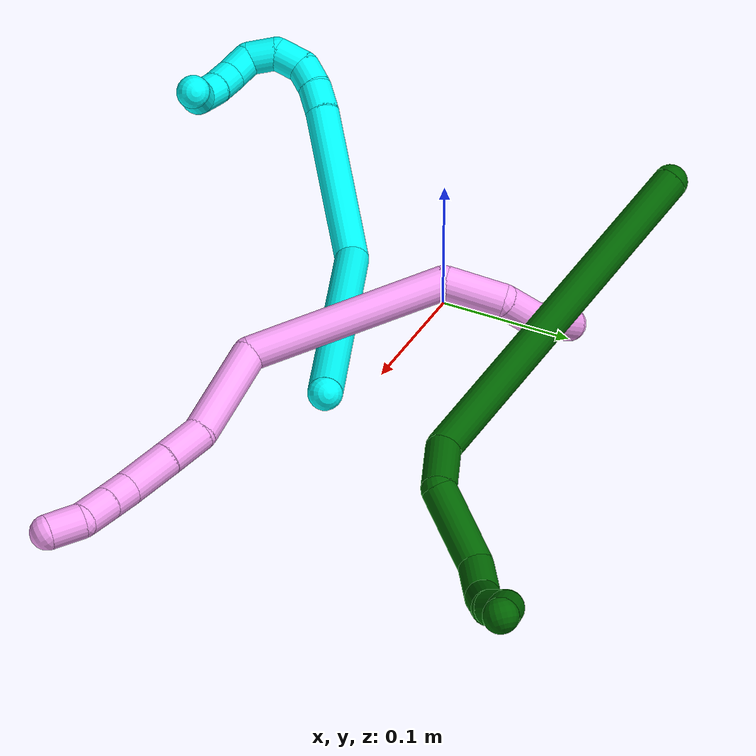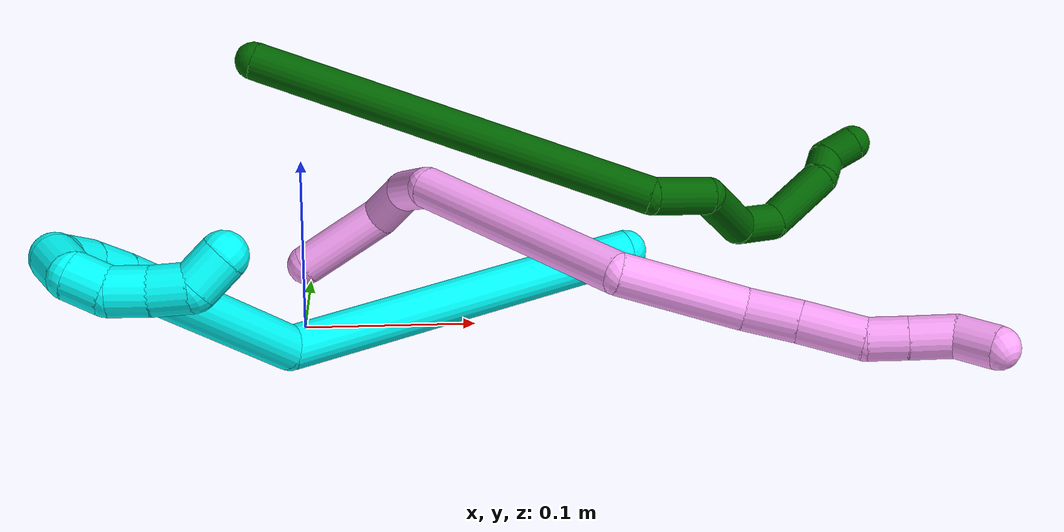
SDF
<sdf version="1.7">
 <world name="default">
  <model name="3">
   <static>0</static>
   <link name="3">
    <collision name="collision-cylinder-e_1_1_4">
     <pose>-0.053777 -0.008825 -0.090783 3.04469 -0.532731 -2.78984</pose>
     <geometry><cylinder><radius>0.0125</radius><length>0.211769</length></cylinder></geometry>
     <surface>
      <friction><ode><mu>1.16</mu><mu2>1.16</mu2><slip1>0</slip1><slip2>0</slip2></ode></friction>
      <contact><ode><kp>1e+06</kp><kd>1</kd><max_vel>0</max_vel><min_depth>0.001</min_depth></ode></contact>
     </surface>
    </collision>
    <visual name="visual-cylinder-e_1_1_4">
     <pose>-0.053777 -0.008825 -0.090783 3.04469 -0.532731 -2.78984</pose>
     <geometry><cylinder><radius>0.0125</radius><length>0.211769</length></cylinder></geometry>
     <material><ambient>0.003922 1 0.996078 1</ambient></material>
    </visual>
    <collision name="collision-cylinder-e_2_4_5">
     <pose>-0.142018 -0.058811 -0.209303 2.16375 -0.606918 -1.06397</pose>
     <geometry><cylinder><radius>0.0125</radius><length>0.120851</length></cylinder></geometry>
     <surface>
      <friction><ode><mu>1.16</mu><mu2>1.16</mu2><slip1>0</slip1><slip2>0</slip2></ode></friction>
      <contact><ode><kp>1e+06</kp><kd>1</kd><max_vel>0</max_vel><min_depth>0.001</min_depth></ode></contact>
     </surface>
    </collision>
    <visual name="visual-cylinder-e_2_4_5">
     <pose>-0.142018 -0.058811 -0.209303 2.16375 -0.606918 -1.06397</pose>
     <geometry><cylinder><radius>0.0125</radius><length>0.120851</length></cylinder></geometry>
     <material><ambient>0.003922 1 0.996078 1</ambient></material>
    </visual>
    <collision name="collision-cylinder-e_3_5_6">
     <pose>-0.181905 -0.107711 -0.24265 2.1981 -0.516157 -0.954958</pose>
     <geometry><cylinder><radius>0.0125</radius><length>0.021981</length></cylinder></geometry>
     <surface>
      <friction><ode><mu>1.16</mu><mu2>1.16</mu2><slip1>0</slip1><slip2>0</slip2></ode></friction>
      <contact><ode><kp>1e+06</kp><kd>1</kd><max_vel>0</max_vel><min_depth>0.001</min_depth></ode></contact>
     </surface>
    </collision>
    <visual name="visual-cylinder-e_3_5_6">
     <pose>-0.181905 -0.107711 -0.24265 2.1981 -0.516157 -0.954958</pose>
     <geometry><cylinder><radius>0.0125</radius><length>0.021981</length></cylinder></geometry>
     <material><ambient>0.003922 1 0.996078 1</ambient></material>
    </visual>
    <collision name="collision-cylinder-e_4_6_7">
     <pose>-0.190582 -0.12287 -0.254459 2.26669 -0.324521 -0.673404</pose>
     <geometry><cylinder><radius>0.0125</radius><length>0.020401</length></cylinder></geometry>
     <surface>
      <friction><ode><mu>1.16</mu><mu2>1.16</mu2><slip1>0</slip1><slip2>0</slip2></ode></friction>
      <contact><ode><kp>1e+06</kp><kd>1</kd><max_vel>0</max_vel><min_depth>0.001</min_depth></ode></contact>
     </surface>
    </collision>
    <visual name="visual-cylinder-e_4_6_7">
     <pose>-0.190582 -0.12287 -0.254459 2.26669 -0.324521 -0.673404</pose>
     <geometry><cylinder><radius>0.0125</radius><length>0.020401</length></cylinder></geometry>
     <material><ambient>0.003922 1 0.996078 1</ambient></material>
    </visual>
    <collision name="collision-cylinder-e_5_7_8">
     <pose>-0.190947 -0.14022 -0.264964 1.98006 0.26072 0.394353</pose>
     <geometry><cylinder><radius>0.0125</radius><length>0.022406</length></cylinder></geometry>
     <surface>
      <friction><ode><mu>1.16</mu><mu2>1.16</mu2><slip1>0</slip1><slip2>0</slip2></ode></friction>
      <contact><ode><kp>1e+06</kp><kd>1</kd><max_vel>0</max_vel><min_depth>0.001</min_depth></ode></contact>
     </surface>
    </collision>
    <visual name="visual-cylinder-e_5_7_8">
     <pose>-0.190947 -0.14022 -0.264964 1.98006 0.26072 0.394353</pose>
     <geometry><cylinder><radius>0.0125</radius><length>0.022406</length></cylinder></geometry>
     <material><ambient>0.003922 1 0.996078 1</ambient></material>
    </visual>
    <collision name="collision-cylinder-e_6_8_9">
     <pose>-0.179643 -0.155851 -0.272602 2.09956 0.905601 1.40633</pose>
     <geometry><cylinder><radius>0.0125</radius><length>0.021393</length></cylinder></geometry>
     <surface>
      <friction><ode><mu>1.16</mu><mu2>1.16</mu2><slip1>0</slip1><slip2>0</slip2></ode></friction>
      <contact><ode><kp>1e+06</kp><kd>1</kd><max_vel>0</max_vel><min_depth>0.001</min_depth></ode></contact>
     </surface>
    </collision>
    <visual name="visual-cylinder-e_6_8_9">
     <pose>-0.179643 -0.155851 -0.272602 2.09956 0.905601 1.40633</pose>
     <geometry><cylinder><radius>0.0125</radius><length>0.021393</length></cylinder></geometry>
     <material><ambient>0.003922 1 0.996078 1</ambient></material>
    </visual>
    <collision name="collision-cylinder-e_7_9_10">
     <pose>-0.161429 -0.162163 -0.273934 0.297111 1.36069 0.241043</pose>
     <geometry><cylinder><radius>0.0125</radius><length>0.020036</length></cylinder></geometry>
     <surface>
      <friction><ode><mu>1.16</mu><mu2>1.16</mu2><slip1>0</slip1><slip2>0</slip2></ode></friction>
      <contact><ode><kp>1e+06</kp><kd>1</kd><max_vel>0</max_vel><min_depth>0.001</min_depth></ode></contact>
     </surface>
    </collision>
    <visual name="visual-cylinder-e_7_9_10">
     <pose>-0.161429 -0.162163 -0.273934 0.297111 1.36069 0.241043</pose>
     <geometry><cylinder><radius>0.0125</radius><length>0.020036</length></cylinder></geometry>
     <material><ambient>0.003922 1 0.996078 1</ambient></material>
    </visual>
    <collision name="collision-cylinder-e_8_10_11">
     <pose>-0.143419 -0.164326 -0.26601 0.256 0.929924 0.128948</pose>
     <geometry><cylinder><radius>0.0125</radius><length>0.020492</length></cylinder></geometry>
     <surface>
      <friction><ode><mu>1.16</mu><mu2>1.16</mu2><slip1>0</slip1><slip2>0</slip2></ode></friction>
      <contact><ode><kp>1e+06</kp><kd>1</kd><max_vel>0</max_vel><min_depth>0.001</min_depth></ode></contact>
     </surface>
    </collision>
    <visual name="visual-cylinder-e_8_10_11">
     <pose>-0.143419 -0.164326 -0.26601 0.256 0.929924 0.128948</pose>
     <geometry><cylinder><radius>0.0125</radius><length>0.020492</length></cylinder></geometry>
     <material><ambient>0.003922 1 0.996078 1</ambient></material>
    </visual>
    <collision name="collision-cylinder-e_9_11_12">
     <pose>-0.127263 -0.16879 -0.254345 0.469653 0.88983 0.227157</pose>
     <geometry><cylinder><radius>0.0125</radius><length>0.020446</length></cylinder></geometry>
     <surface>
      <friction><ode><mu>1.16</mu><mu2>1.16</mu2><slip1>0</slip1><slip2>0</slip2></ode></friction>
      <contact><ode><kp>1e+06</kp><kd>1</kd><max_vel>0</max_vel><min_depth>0.001</min_depth></ode></contact>
     </surface>
    </collision>
    <visual name="visual-cylinder-e_9_11_12">
     <pose>-0.127263 -0.16879 -0.254345 0.469653 0.88983 0.227157</pose>
     <geometry><cylinder><radius>0.0125</radius><length>0.020446</length></cylinder></geometry>
     <material><ambient>0.003922 1 0.996078 1</ambient></material>
    </visual>
    <collision name="collision-cylinder-e_10_12_2">
     <pose>-0.11795 -0.17599 -0.23955 0.442158 0.135864 0.030581</pose>
     <geometry><cylinder><radius>0.0125</radius><length>0.020225</length></cylinder></geometry>
     <surface>
      <friction><ode><mu>1.16</mu><mu2>1.16</mu2><slip1>0</slip1><slip2>0</slip2></ode></friction>
      <contact><ode><kp>1e+06</kp><kd>1</kd><max_vel>0</max_vel><min_depth>0.001</min_depth></ode></contact>
     </surface>
    </collision>
    <visual name="visual-cylinder-e_10_12_2">
     <pose>-0.11795 -0.17599 -0.23955 0.442158 0.135864 0.030581</pose>
     <geometry><cylinder><radius>0.0125</radius><length>0.020225</length></cylinder></geometry>
     <material><ambient>0.003922 1 0.996078 1</ambient></material>
    </visual>
    <collision name="collision-sphere-2">
     <pose>-0.116581 -0.180277 -0.230494 0 -0 0</pose>
     <geometry><sphere><radius>0.0125</radius></sphere></geometry>
     <surface>
      <friction><ode><mu>1.16</mu><mu2>1.16</mu2><slip1>0</slip1><slip2>0</slip2></ode></friction>
      <contact><ode><kp>1e+06</kp><kd>1</kd><max_vel>0</max_vel><min_depth>0.001</min_depth></ode></contact>
     </surface>
    </collision>
    <visual name="visual-sphere-2">
     <pose>-0.116581 -0.180277 -0.230494 0 -0 0</pose>
     <geometry><sphere><radius>0.0125</radius></sphere></geometry>
     <material><ambient>0.003922 1 0.996078 1</ambient></material>
    </visual>
    <collision name="collision-sphere-12">
     <pose>-0.11932 -0.171702 -0.248606 0 -0 0</pose>
     <geometry><sphere><radius>0.0125</radius></sphere></geometry>
     <surface>
      <friction><ode><mu>1.16</mu><mu2>1.16</mu2><slip1>0</slip1><slip2>0</slip2></ode></friction>
      <contact><ode><kp>1e+06</kp><kd>1</kd><max_vel>0</max_vel><min_depth>0.001</min_depth></ode></contact>
     </surface>
    </collision>
    <visual name="visual-sphere-12">
     <pose>-0.11932 -0.171702 -0.248606 0 -0 0</pose>
     <geometry><sphere><radius>0.0125</radius></sphere></geometry>
     <material><ambient>0.003922 1 0.996078 1</ambient></material>
    </visual>
    <collision name="collision-sphere-11">
     <pose>-0.135206 -0.165877 -0.260084 0 -0 0</pose>
     <geometry><sphere><radius>0.0125</radius></sphere></geometry>
     <surface>
      <friction><ode><mu>1.16</mu><mu2>1.16</mu2><slip1>0</slip1><slip2>0</slip2></ode></friction>
      <contact><ode><kp>1e+06</kp><kd>1</kd><max_vel>0</max_vel><min_depth>0.001</min_depth></ode></contact>
     </surface>
    </collision>
    <visual name="visual-sphere-11">
     <pose>-0.135206 -0.165877 -0.260084 0 -0 0</pose>
     <geometry><sphere><radius>0.0125</radius></sphere></geometry>
     <material><ambient>0.003922 1 0.996078 1</ambient></material>
    </visual>
    <collision name="collision-sphere-10">
     <pose>-0.151632 -0.162775 -0.271937 0 -0 0</pose>
     <geometry><sphere><radius>0.0125</radius></sphere></geometry>
     <surface>
      <friction><ode><mu>1.16</mu><mu2>1.16</mu2><slip1>0</slip1><slip2>0</slip2></ode></friction>
      <contact><ode><kp>1e+06</kp><kd>1</kd><max_vel>0</max_vel><min_depth>0.001</min_depth></ode></contact>
     </surface>
    </collision>
    <visual name="visual-sphere-10">
     <pose>-0.151632 -0.162775 -0.271937 0 -0 0</pose>
     <geometry><sphere><radius>0.0125</radius></sphere></geometry>
     <material><ambient>0.003922 1 0.996078 1</ambient></material>
    </visual>
    <collision name="collision-sphere-9">
     <pose>-0.171227 -0.161551 -0.275932 0 -0 0</pose>
     <geometry><sphere><radius>0.0125</radius></sphere></geometry>
     <surface>
      <friction><ode><mu>1.16</mu><mu2>1.16</mu2><slip1>0</slip1><slip2>0</slip2></ode></friction>
      <contact><ode><kp>1e+06</kp><kd>1</kd><max_vel>0</max_vel><min_depth>0.001</min_depth></ode></contact>
     </surface>
    </collision>
    <visual name="visual-sphere-9">
     <pose>-0.171227 -0.161551 -0.275932 0 -0 0</pose>
     <geometry><sphere><radius>0.0125</radius></sphere></geometry>
     <material><ambient>0.003922 1 0.996078 1</ambient></material>
    </visual>
    <collision name="collision-sphere-4">
     <pose>-0.107555 -0.017649 -0.181567 0 -0 0</pose>
     <geometry><sphere><radius>0.0125</radius></sphere></geometry>
     <surface>
      <friction><ode><mu>1.16</mu><mu2>1.16</mu2><slip1>0</slip1><slip2>0</slip2></ode></friction>
      <contact><ode><kp>1e+06</kp><kd>1</kd><max_vel>0</max_vel><min_depth>0.001</min_depth></ode></contact>
     </surface>
    </collision>
    <visual name="visual-sphere-4">
     <pose>-0.107555 -0.017649 -0.181567 0 -0 0</pose>
     <geometry><sphere><radius>0.0125</radius></sphere></geometry>
     <material><ambient>0.003922 1 0.996078 1</ambient></material>
    </visual>
    <collision name="collision-sphere-1">
     <geometry><sphere><radius>0.0125</radius></sphere></geometry>
     <surface>
      <friction><ode><mu>1.16</mu><mu2>1.16</mu2><slip1>0</slip1><slip2>0</slip2></ode></friction>
      <contact><ode><kp>1e+06</kp><kd>1</kd><max_vel>0</max_vel><min_depth>0.001</min_depth></ode></contact>
     </surface>
    </collision>
    <visual name="visual-sphere-1">
     <geometry><sphere><radius>0.0125</radius></sphere></geometry>
     <material><ambient>0.003922 1 0.996078 1</ambient></material>
    </visual>
    <collision name="collision-sphere-8">
     <pose>-0.188059 -0.15015 -0.269271 0 -0 0</pose>
     <geometry><sphere><radius>0.0125</radius></sphere></geometry>
     <surface>
      <friction><ode><mu>1.16</mu><mu2>1.16</mu2><slip1>0</slip1><slip2>0</slip2></ode></friction>
      <contact><ode><kp>1e+06</kp><kd>1</kd><max_vel>0</max_vel><min_depth>0.001</min_depth></ode></contact>
     </surface>
    </collision>
    <visual name="visual-sphere-8">
     <pose>-0.188059 -0.15015 -0.269271 0 -0 0</pose>
     <geometry><sphere><radius>0.0125</radius></sphere></geometry>
     <material><ambient>0.003922 1 0.996078 1</ambient></material>
    </visual>
    <collision name="collision-sphere-5">
     <pose>-0.176481 -0.099972 -0.23704 0 -0 0</pose>
     <geometry><sphere><radius>0.0125</radius></sphere></geometry>
     <surface>
      <friction><ode><mu>1.16</mu><mu2>1.16</mu2><slip1>0</slip1><slip2>0</slip2></ode></friction>
      <contact><ode><kp>1e+06</kp><kd>1</kd><max_vel>0</max_vel><min_depth>0.001</min_depth></ode></contact>
     </surface>
    </collision>
    <visual name="visual-sphere-5">
     <pose>-0.176481 -0.099972 -0.23704 0 -0 0</pose>
     <geometry><sphere><radius>0.0125</radius></sphere></geometry>
     <material><ambient>0.003922 1 0.996078 1</ambient></material>
    </visual>
    <collision name="collision-sphere-6">
     <pose>-0.18733 -0.11545 -0.248261 0 -0 0</pose>
     <geometry><sphere><radius>0.0125</radius></sphere></geometry>
     <surface>
      <friction><ode><mu>1.16</mu><mu2>1.16</mu2><slip1>0</slip1><slip2>0</slip2></ode></friction>
      <contact><ode><kp>1e+06</kp><kd>1</kd><max_vel>0</max_vel><min_depth>0.001</min_depth></ode></contact>
     </surface>
    </collision>
    <visual name="visual-sphere-6">
     <pose>-0.18733 -0.11545 -0.248261 0 -0 0</pose>
     <geometry><sphere><radius>0.0125</radius></sphere></geometry>
     <material><ambient>0.003922 1 0.996078 1</ambient></material>
    </visual>
    <collision name="collision-sphere-7">
     <pose>-0.193835 -0.13029 -0.260656 0 -0 0</pose>
     <geometry><sphere><radius>0.0125</radius></sphere></geometry>
     <surface>
      <friction><ode><mu>1.16</mu><mu2>1.16</mu2><slip1>0</slip1><slip2>0</slip2></ode></friction>
      <contact><ode><kp>1e+06</kp><kd>1</kd><max_vel>0</max_vel><min_depth>0.001</min_depth></ode></contact>
     </surface>
    </collision>
    <visual name="visual-sphere-7">
     <pose>-0.193835 -0.13029 -0.260656 0 -0 0</pose>
     <geometry><sphere><radius>0.0125</radius></sphere></geometry>
     <material><ambient>0.003922 1 0.996078 1</ambient></material>
    </visual>
    <inertial>
     <pose>-0.111441 -0.067906 -0.175596 0 -0 0</pose>
     <mass>0.5</mass>
     <inertia>
      <ixx>-0.000934</ixx>
      <ixy>0</ixy>
      <ixz>0</ixz>
      <iyy>0.000428</iyy>
      <iyz>0</iyz>
      <izz>0.000647</izz>
     </inertia>
    </inertial>
   </link>
   <pose>0.189434 0.001111 0.042133 -0.916089 0.518002 -0.449057</pose>
  </model>
  <model name="4">
   <static>0</static>
   <link name="4">
    <collision name="collision-cylinder-e_1_1_4">
     <pose>0.028392 -0.000586 0.003512 0.165439 1.44604 0.14606</pose>
     <geometry><cylinder><radius>0.0125</radius><length>0.057229</length></cylinder></geometry>
     <surface>
      <friction><ode><mu>1.16</mu><mu2>1.16</mu2><slip1>0</slip1><slip2>0</slip2></ode></friction>
      <contact><ode><kp>1e+06</kp><kd>1</kd><max_vel>0</max_vel><min_depth>0.001</min_depth></ode></contact>
     </surface>
    </collision>
    <visual name="visual-cylinder-e_1_1_4">
     <pose>0.028392 -0.000586 0.003512 0.165439 1.44604 0.14606</pose>
     <geometry><cylinder><radius>0.0125</radius><length>0.057229</length></cylinder></geometry>
     <material><ambient>1 0.65098 0.996078 1</ambient></material>
    </visual>
    <collision name="collision-cylinder-e_2_4_5">
     <pose>0.06952 0.006319 0.01096 -1.08703 0.984333 -0.626593</pose>
     <geometry><cylinder><radius>0.0125</radius><length>0.030583</length></cylinder></geometry>
     <surface>
      <friction><ode><mu>1.16</mu><mu2>1.16</mu2><slip1>0</slip1><slip2>0</slip2></ode></friction>
      <contact><ode><kp>1e+06</kp><kd>1</kd><max_vel>0</max_vel><min_depth>0.001</min_depth></ode></contact>
     </surface>
    </collision>
    <visual name="visual-cylinder-e_2_4_5">
     <pose>0.06952 0.006319 0.01096 -1.08703 0.984333 -0.626593</pose>
     <geometry><cylinder><radius>0.0125</radius><length>0.030583</length></cylinder></geometry>
     <material><ambient>1 0.65098 0.996078 1</ambient></material>
    </visual>
    <collision name="collision-cylinder-e_3_5_6">
     <pose>0.091454 0.028032 0.028958 -0.791044 0.431003 -0.182286</pose>
     <geometry><cylinder><radius>0.0125</radius><length>0.044026</length></cylinder></geometry>
     <surface>
      <friction><ode><mu>1.16</mu><mu2>1.16</mu2><slip1>0</slip1><slip2>0</slip2></ode></friction>
      <contact><ode><kp>1e+06</kp><kd>1</kd><max_vel>0</max_vel><min_depth>0.001</min_depth></ode></contact>
     </surface>
    </collision>
    <visual name="visual-cylinder-e_3_5_6">
     <pose>0.091454 0.028032 0.028958 -0.791044 0.431003 -0.182286</pose>
     <geometry><cylinder><radius>0.0125</radius><length>0.044026</length></cylinder></geometry>
     <material><ambient>1 0.65098 0.996078 1</ambient></material>
    </visual>
    <collision name="collision-cylinder-e_4_6_7">
     <pose>0.132658 0.046041 0.109455 -0.056945 0.448339 -0.012987</pose>
     <geometry><cylinder><radius>0.0125</radius><length>0.14768</length></cylinder></geometry>
     <surface>
      <friction><ode><mu>1.16</mu><mu2>1.16</mu2><slip1>0</slip1><slip2>0</slip2></ode></friction>
      <contact><ode><kp>1e+06</kp><kd>1</kd><max_vel>0</max_vel><min_depth>0.001</min_depth></ode></contact>
     </surface>
    </collision>
    <visual name="visual-cylinder-e_4_6_7">
     <pose>0.132658 0.046041 0.109455 -0.056945 0.448339 -0.012987</pose>
     <geometry><cylinder><radius>0.0125</radius><length>0.14768</length></cylinder></geometry>
     <material><ambient>1 0.65098 0.996078 1</ambient></material>
    </visual>
    <collision name="collision-cylinder-e_5_7_8">
     <pose>0.185179 0.027343 0.198297 0.787119 0.573708 0.243758</pose>
     <geometry><cylinder><radius>0.0125</radius><length>0.075593</length></cylinder></geometry>
     <surface>
      <friction><ode><mu>1.16</mu><mu2>1.16</mu2><slip1>0</slip1><slip2>0</slip2></ode></friction>
      <contact><ode><kp>1e+06</kp><kd>1</kd><max_vel>0</max_vel><min_depth>0.001</min_depth></ode></contact>
     </surface>
    </collision>
    <visual name="visual-cylinder-e_5_7_8">
     <pose>0.185179 0.027343 0.198297 0.787119 0.573708 0.243758</pose>
     <geometry><cylinder><radius>0.0125</radius><length>0.075593</length></cylinder></geometry>
     <material><ambient>1 0.65098 0.996078 1</ambient></material>
    </visual>
    <collision name="collision-cylinder-e_6_8_9">
     <pose>0.215587 -0.000232 0.232257 0.414958 0.664829 0.14509</pose>
     <geometry><cylinder><radius>0.0125</radius><length>0.032076</length></cylinder></geometry>
     <surface>
      <friction><ode><mu>1.16</mu><mu2>1.16</mu2><slip1>0</slip1><slip2>0</slip2></ode></friction>
      <contact><ode><kp>1e+06</kp><kd>1</kd><max_vel>0</max_vel><min_depth>0.001</min_depth></ode></contact>
     </surface>
    </collision>
    <visual name="visual-cylinder-e_6_8_9">
     <pose>0.215587 -0.000232 0.232257 0.414958 0.664829 0.14509</pose>
     <geometry><cylinder><radius>0.0125</radius><length>0.032076</length></cylinder></geometry>
     <material><ambient>1 0.65098 0.996078 1</ambient></material>
    </visual>
    <collision name="collision-cylinder-e_7_9_10">
     <pose>0.236665 -0.011002 0.257945 0.382137 0.633198 0.126572</pose>
     <geometry><cylinder><radius>0.0125</radius><length>0.037802</length></cylinder></geometry>
     <surface>
      <friction><ode><mu>1.16</mu><mu2>1.16</mu2><slip1>0</slip1><slip2>0</slip2></ode></friction>
      <contact><ode><kp>1e+06</kp><kd>1</kd><max_vel>0</max_vel><min_depth>0.001</min_depth></ode></contact>
     </surface>
    </collision>
    <visual name="visual-cylinder-e_7_9_10">
     <pose>0.236665 -0.011002 0.257945 0.382137 0.633198 0.126572</pose>
     <geometry><cylinder><radius>0.0125</radius><length>0.037802</length></cylinder></geometry>
     <material><ambient>1 0.65098 0.996078 1</ambient></material>
    </visual>
    <collision name="collision-cylinder-e_8_10_11">
     <pose>0.257 -0.020348 0.278099 0.547036 0.914807 0.274448</pose>
     <geometry><cylinder><radius>0.0125</radius><length>0.023095</length></cylinder></geometry>
     <surface>
      <friction><ode><mu>1.16</mu><mu2>1.16</mu2><slip1>0</slip1><slip2>0</slip2></ode></friction>
      <contact><ode><kp>1e+06</kp><kd>1</kd><max_vel>0</max_vel><min_depth>0.001</min_depth></ode></contact>
     </surface>
    </collision>
    <visual name="visual-cylinder-e_8_10_11">
     <pose>0.257 -0.020348 0.278099 0.547036 0.914807 0.274448</pose>
     <geometry><cylinder><radius>0.0125</radius><length>0.023095</length></cylinder></geometry>
     <material><ambient>1 0.65098 0.996078 1</ambient></material>
    </visual>
    <collision name="collision-cylinder-e_9_11_12">
     <pose>0.276785 -0.028156 0.290937 0.545854 0.926854 0.277954</pose>
     <geometry><cylinder><radius>0.0125</radius><length>0.026593</length></cylinder></geometry>
     <surface>
      <friction><ode><mu>1.16</mu><mu2>1.16</mu2><slip1>0</slip1><slip2>0</slip2></ode></friction>
      <contact><ode><kp>1e+06</kp><kd>1</kd><max_vel>0</max_vel><min_depth>0.001</min_depth></ode></contact>
     </surface>
    </collision>
    <visual name="visual-cylinder-e_9_11_12">
     <pose>0.276785 -0.028156 0.290937 0.545854 0.926854 0.277954</pose>
     <geometry><cylinder><radius>0.0125</radius><length>0.026593</length></cylinder></geometry>
     <material><ambient>1 0.65098 0.996078 1</ambient></material>
    </visual>
    <collision name="collision-cylinder-e_10_12_2">
     <pose>0.294344 -0.031799 0.308348 -0.047309 0.578686 -0.014086</pose>
     <geometry><cylinder><radius>0.0125</radius><length>0.025323</length></cylinder></geometry>
     <surface>
      <friction><ode><mu>1.16</mu><mu2>1.16</mu2><slip1>0</slip1><slip2>0</slip2></ode></friction>
      <contact><ode><kp>1e+06</kp><kd>1</kd><max_vel>0</max_vel><min_depth>0.001</min_depth></ode></contact>
     </surface>
    </collision>
    <visual name="visual-cylinder-e_10_12_2">
     <pose>0.294344 -0.031799 0.308348 -0.047309 0.578686 -0.014086</pose>
     <geometry><cylinder><radius>0.0125</radius><length>0.025323</length></cylinder></geometry>
     <material><ambient>1 0.65098 0.996078 1</ambient></material>
    </visual>
    <collision name="collision-sphere-2">
     <pose>0.301269 -0.031297 0.318936 0 -0 0</pose>
     <geometry><sphere><radius>0.0125</radius></sphere></geometry>
     <surface>
      <friction><ode><mu>1.16</mu><mu2>1.16</mu2><slip1>0</slip1><slip2>0</slip2></ode></friction>
      <contact><ode><kp>1e+06</kp><kd>1</kd><max_vel>0</max_vel><min_depth>0.001</min_depth></ode></contact>
     </surface>
    </collision>
    <visual name="visual-sphere-2">
     <pose>0.301269 -0.031297 0.318936 0 -0 0</pose>
     <geometry><sphere><radius>0.0125</radius></sphere></geometry>
     <material><ambient>1 0.65098 0.996078 1</ambient></material>
    </visual>
    <collision name="collision-sphere-12">
     <pose>0.287418 -0.0323 0.29776 0 -0 0</pose>
     <geometry><sphere><radius>0.0125</radius></sphere></geometry>
     <surface>
      <friction><ode><mu>1.16</mu><mu2>1.16</mu2><slip1>0</slip1><slip2>0</slip2></ode></friction>
      <contact><ode><kp>1e+06</kp><kd>1</kd><max_vel>0</max_vel><min_depth>0.001</min_depth></ode></contact>
     </surface>
    </collision>
    <visual name="visual-sphere-12">
     <pose>0.287418 -0.0323 0.29776 0 -0 0</pose>
     <geometry><sphere><radius>0.0125</radius></sphere></geometry>
     <material><ambient>1 0.65098 0.996078 1</ambient></material>
    </visual>
    <collision name="collision-sphere-11">
     <pose>0.266151 -0.024012 0.284114 0 -0 0</pose>
     <geometry><sphere><radius>0.0125</radius></sphere></geometry>
     <surface>
      <friction><ode><mu>1.16</mu><mu2>1.16</mu2><slip1>0</slip1><slip2>0</slip2></ode></friction>
      <contact><ode><kp>1e+06</kp><kd>1</kd><max_vel>0</max_vel><min_depth>0.001</min_depth></ode></contact>
     </surface>
    </collision>
    <visual name="visual-sphere-11">
     <pose>0.266151 -0.024012 0.284114 0 -0 0</pose>
     <geometry><sphere><radius>0.0125</radius></sphere></geometry>
     <material><ambient>1 0.65098 0.996078 1</ambient></material>
    </visual>
    <collision name="collision-sphere-10">
     <pose>0.247849 -0.016684 0.272083 0 -0 0</pose>
     <geometry><sphere><radius>0.0125</radius></sphere></geometry>
     <surface>
      <friction><ode><mu>1.16</mu><mu2>1.16</mu2><slip1>0</slip1><slip2>0</slip2></ode></friction>
      <contact><ode><kp>1e+06</kp><kd>1</kd><max_vel>0</max_vel><min_depth>0.001</min_depth></ode></contact>
     </surface>
    </collision>
    <visual name="visual-sphere-10">
     <pose>0.247849 -0.016684 0.272083 0 -0 0</pose>
     <geometry><sphere><radius>0.0125</radius></sphere></geometry>
     <material><ambient>1 0.65098 0.996078 1</ambient></material>
    </visual>
    <collision name="collision-sphere-9">
     <pose>0.225481 -0.00532 0.243808 0 -0 0</pose>
     <geometry><sphere><radius>0.0125</radius></sphere></geometry>
     <surface>
      <friction><ode><mu>1.16</mu><mu2>1.16</mu2><slip1>0</slip1><slip2>0</slip2></ode></friction>
      <contact><ode><kp>1e+06</kp><kd>1</kd><max_vel>0</max_vel><min_depth>0.001</min_depth></ode></contact>
     </surface>
    </collision>
    <visual name="visual-sphere-9">
     <pose>0.225481 -0.00532 0.243808 0 -0 0</pose>
     <geometry><sphere><radius>0.0125</radius></sphere></geometry>
     <material><ambient>1 0.65098 0.996078 1</ambient></material>
    </visual>
    <collision name="collision-sphere-4">
     <pose>0.056784 -0.001173 0.007024 0 -0 0</pose>
     <geometry><sphere><radius>0.0125</radius></sphere></geometry>
     <surface>
      <friction><ode><mu>1.16</mu><mu2>1.16</mu2><slip1>0</slip1><slip2>0</slip2></ode></friction>
      <contact><ode><kp>1e+06</kp><kd>1</kd><max_vel>0</max_vel><min_depth>0.001</min_depth></ode></contact>
     </surface>
    </collision>
    <visual name="visual-sphere-4">
     <pose>0.056784 -0.001173 0.007024 0 -0 0</pose>
     <geometry><sphere><radius>0.0125</radius></sphere></geometry>
     <material><ambient>1 0.65098 0.996078 1</ambient></material>
    </visual>
    <collision name="collision-sphere-1">
     <geometry><sphere><radius>0.0125</radius></sphere></geometry>
     <surface>
      <friction><ode><mu>1.16</mu><mu2>1.16</mu2><slip1>0</slip1><slip2>0</slip2></ode></friction>
      <contact><ode><kp>1e+06</kp><kd>1</kd><max_vel>0</max_vel><min_depth>0.001</min_depth></ode></contact>
     </surface>
    </collision>
    <visual name="visual-sphere-1">
     <geometry><sphere><radius>0.0125</radius></sphere></geometry>
     <material><ambient>1 0.65098 0.996078 1</ambient></material>
    </visual>
    <collision name="collision-sphere-8">
     <pose>0.205693 0.004857 0.220706 0 -0 0</pose>
     <geometry><sphere><radius>0.0125</radius></sphere></geometry>
     <surface>
      <friction><ode><mu>1.16</mu><mu2>1.16</mu2><slip1>0</slip1><slip2>0</slip2></ode></friction>
      <contact><ode><kp>1e+06</kp><kd>1</kd><max_vel>0</max_vel><min_depth>0.001</min_depth></ode></contact>
     </surface>
    </collision>
    <visual name="visual-sphere-8">
     <pose>0.205693 0.004857 0.220706 0 -0 0</pose>
     <geometry><sphere><radius>0.0125</radius></sphere></geometry>
     <material><ambient>1 0.65098 0.996078 1</ambient></material>
    </visual>
    <collision name="collision-sphere-5">
     <pose>0.082257 0.01381 0.014896 0 -0 0</pose>
     <geometry><sphere><radius>0.0125</radius></sphere></geometry>
     <surface>
      <friction><ode><mu>1.16</mu><mu2>1.16</mu2><slip1>0</slip1><slip2>0</slip2></ode></friction>
      <contact><ode><kp>1e+06</kp><kd>1</kd><max_vel>0</max_vel><min_depth>0.001</min_depth></ode></contact>
     </surface>
    </collision>
    <visual name="visual-sphere-5">
     <pose>0.082257 0.01381 0.014896 0 -0 0</pose>
     <geometry><sphere><radius>0.0125</radius></sphere></geometry>
     <material><ambient>1 0.65098 0.996078 1</ambient></material>
    </visual>
    <collision name="collision-sphere-6">
     <pose>0.10065 0.042254 0.04302 0 -0 0</pose>
     <geometry><sphere><radius>0.0125</radius></sphere></geometry>
     <surface>
      <friction><ode><mu>1.16</mu><mu2>1.16</mu2><slip1>0</slip1><slip2>0</slip2></ode></friction>
      <contact><ode><kp>1e+06</kp><kd>1</kd><max_vel>0</max_vel><min_depth>0.001</min_depth></ode></contact>
     </surface>
    </collision>
    <visual name="visual-sphere-6">
     <pose>0.10065 0.042254 0.04302 0 -0 0</pose>
     <geometry><sphere><radius>0.0125</radius></sphere></geometry>
     <material><ambient>1 0.65098 0.996078 1</ambient></material>
    </visual>
    <collision name="collision-sphere-7">
     <pose>0.164665 0.049828 0.175889 0 -0 0</pose>
     <geometry><sphere><radius>0.0125</radius></sphere></geometry>
     <surface>
      <friction><ode><mu>1.16</mu><mu2>1.16</mu2><slip1>0</slip1><slip2>0</slip2></ode></friction>
      <contact><ode><kp>1e+06</kp><kd>1</kd><max_vel>0</max_vel><min_depth>0.001</min_depth></ode></contact>
     </surface>
    </collision>
    <visual name="visual-sphere-7">
     <pose>0.164665 0.049828 0.175889 0 -0 0</pose>
     <geometry><sphere><radius>0.0125</radius></sphere></geometry>
     <material><ambient>1 0.65098 0.996078 1</ambient></material>
    </visual>
    <inertial>
     <pose>0.155955 0.015626 0.144268 0 -0 0</pose>
     <mass>0.5</mass>
     <inertia>
      <ixx>0.000331</ixx>
      <ixy>0</ixy>
      <ixz>0</ixz>
      <iyy>0.000349</iyy>
      <iyz>0</iyz>
      <izz>-0.000144</izz>
     </inertia>
    </inertial>
   </link>
   <pose>-0.002415 0.099287 0.011493 2.37927 -0.700218 -0.036411</pose>
  </model>
  <model name="6">
   <static>0</static>
   <link name="6">
    <collision name="collision-cylinder-e_1_1_4">
     <pose>-0.06004 0.094902 0.077403 -0.886606 -0.455828 0.21938</pose>
     <geometry><cylinder><radius>0.0125</radius><length>0.272782</length></cylinder></geometry>
     <surface>
      <friction><ode><mu>1.16</mu><mu2>1.16</mu2><slip1>0</slip1><slip2>0</slip2></ode></friction>
      <contact><ode><kp>1e+06</kp><kd>1</kd><max_vel>0</max_vel><min_depth>0.001</min_depth></ode></contact>
     </surface>
    </collision>
    <visual name="visual-cylinder-e_1_1_4">
     <pose>-0.06004 0.094902 0.077403 -0.886606 -0.455828 0.21938</pose>
     <geometry><cylinder><radius>0.0125</radius><length>0.272782</length></cylinder></geometry>
     <material><ambient>0 0.392157 0.003922 1</ambient></material>
    </visual>
    <collision name="collision-cylinder-e_2_4_5">
     <pose>-0.117217 0.203832 0.170385 -0.733075 0.135753 -0.052182</pose>
     <geometry><cylinder><radius>0.0125</radius><length>0.042317</length></cylinder></geometry>
     <surface>
      <friction><ode><mu>1.16</mu><mu2>1.16</mu2><slip1>0</slip1><slip2>0</slip2></ode></friction>
      <contact><ode><kp>1e+06</kp><kd>1</kd><max_vel>0</max_vel><min_depth>0.001</min_depth></ode></contact>
     </surface>
    </collision>
    <visual name="visual-cylinder-e_2_4_5">
     <pose>-0.117217 0.203832 0.170385 -0.733075 0.135753 -0.052182</pose>
     <geometry><cylinder><radius>0.0125</radius><length>0.042317</length></cylinder></geometry>
     <material><ambient>0 0.392157 0.003922 1</ambient></material>
    </visual>
    <collision name="collision-cylinder-e_3_5_6">
     <pose>-0.108061 0.217962 0.214856 -0.003529 0.214433 -0.00038</pose>
     <geometry><cylinder><radius>0.0125</radius><length>0.059139</length></cylinder></geometry>
     <surface>
      <friction><ode><mu>1.16</mu><mu2>1.16</mu2><slip1>0</slip1><slip2>0</slip2></ode></friction>
      <contact><ode><kp>1e+06</kp><kd>1</kd><max_vel>0</max_vel><min_depth>0.001</min_depth></ode></contact>
     </surface>
    </collision>
    <visual name="visual-cylinder-e_3_5_6">
     <pose>-0.108061 0.217962 0.214856 -0.003529 0.214433 -0.00038</pose>
     <geometry><cylinder><radius>0.0125</radius><length>0.059139</length></cylinder></geometry>
     <material><ambient>0 0.392157 0.003922 1</ambient></material>
    </visual>
    <collision name="collision-cylinder-e_4_6_7">
     <pose>-0.096463 0.227181 0.256322 -0.627383 0.329198 -0.107664</pose>
     <geometry><cylinder><radius>0.0125</radius><length>0.032826</length></cylinder></geometry>
     <surface>
      <friction><ode><mu>1.16</mu><mu2>1.16</mu2><slip1>0</slip1><slip2>0</slip2></ode></friction>
      <contact><ode><kp>1e+06</kp><kd>1</kd><max_vel>0</max_vel><min_depth>0.001</min_depth></ode></contact>
     </surface>
    </collision>
    <visual name="visual-cylinder-e_4_6_7">
     <pose>-0.096463 0.227181 0.256322 -0.627383 0.329198 -0.107664</pose>
     <geometry><cylinder><radius>0.0125</radius><length>0.032826</length></cylinder></geometry>
     <material><ambient>0 0.392157 0.003922 1</ambient></material>
    </visual>
    <collision name="collision-cylinder-e_5_7_8">
     <pose>-0.076951 0.255866 0.276137 -1.21636 0.597759 -0.422617</pose>
     <geometry><cylinder><radius>0.0125</radius><length>0.050482</length></cylinder></geometry>
     <surface>
      <friction><ode><mu>1.16</mu><mu2>1.16</mu2><slip1>0</slip1><slip2>0</slip2></ode></friction>
      <contact><ode><kp>1e+06</kp><kd>1</kd><max_vel>0</max_vel><min_depth>0.001</min_depth></ode></contact>
     </surface>
    </collision>
    <visual name="visual-cylinder-e_5_7_8">
     <pose>-0.076951 0.255866 0.276137 -1.21636 0.597759 -0.422617</pose>
     <geometry><cylinder><radius>0.0125</radius><length>0.050482</length></cylinder></geometry>
     <material><ambient>0 0.392157 0.003922 1</ambient></material>
    </visual>
    <collision name="collision-cylinder-e_6_8_9">
     <pose>-0.053868 0.279313 0.28593 -0.988904 1.08887 -0.631036</pose>
     <geometry><cylinder><radius>0.0125</radius><length>0.020039</length></cylinder></geometry>
     <surface>
      <friction><ode><mu>1.16</mu><mu2>1.16</mu2><slip1>0</slip1><slip2>0</slip2></ode></friction>
      <contact><ode><kp>1e+06</kp><kd>1</kd><max_vel>0</max_vel><min_depth>0.001</min_depth></ode></contact>
     </surface>
    </collision>
    <visual name="visual-cylinder-e_6_8_9">
     <pose>-0.053868 0.279313 0.28593 -0.988904 1.08887 -0.631036</pose>
     <geometry><cylinder><radius>0.0125</radius><length>0.020039</length></cylinder></geometry>
     <material><ambient>0 0.392157 0.003922 1</ambient></material>
    </visual>
    <collision name="collision-cylinder-e_7_9_2">
     <pose>-0.041255 0.293209 0.291852 -1.2463 0.339714 -0.245281</pose>
     <geometry><cylinder><radius>0.0125</radius><length>0.022416</length></cylinder></geometry>
     <surface>
      <friction><ode><mu>1.16</mu><mu2>1.16</mu2><slip1>0</slip1><slip2>0</slip2></ode></friction>
      <contact><ode><kp>1e+06</kp><kd>1</kd><max_vel>0</max_vel><min_depth>0.001</min_depth></ode></contact>
     </surface>
    </collision>
    <visual name="visual-cylinder-e_7_9_2">
     <pose>-0.041255 0.293209 0.291852 -1.2463 0.339714 -0.245281</pose>
     <geometry><cylinder><radius>0.0125</radius><length>0.022416</length></cylinder></geometry>
     <material><ambient>0 0.392157 0.003922 1</ambient></material>
    </visual>
    <collision name="collision-sphere-2">
     <pose>-0.03752 0.303224 0.295221 0 -0 0</pose>
     <geometry><sphere><radius>0.0125</radius></sphere></geometry>
     <surface>
      <friction><ode><mu>1.16</mu><mu2>1.16</mu2><slip1>0</slip1><slip2>0</slip2></ode></friction>
      <contact><ode><kp>1e+06</kp><kd>1</kd><max_vel>0</max_vel><min_depth>0.001</min_depth></ode></contact>
     </surface>
    </collision>
    <visual name="visual-sphere-2">
     <pose>-0.03752 0.303224 0.295221 0 -0 0</pose>
     <geometry><sphere><radius>0.0125</radius></sphere></geometry>
     <material><ambient>0 0.392157 0.003922 1</ambient></material>
    </visual>
    <collision name="collision-sphere-9">
     <pose>-0.04499 0.283193 0.288483 0 -0 0</pose>
     <geometry><sphere><radius>0.0125</radius></sphere></geometry>
     <surface>
      <friction><ode><mu>1.16</mu><mu2>1.16</mu2><slip1>0</slip1><slip2>0</slip2></ode></friction>
      <contact><ode><kp>1e+06</kp><kd>1</kd><max_vel>0</max_vel><min_depth>0.001</min_depth></ode></contact>
     </surface>
    </collision>
    <visual name="visual-sphere-9">
     <pose>-0.04499 0.283193 0.288483 0 -0 0</pose>
     <geometry><sphere><radius>0.0125</radius></sphere></geometry>
     <material><ambient>0 0.392157 0.003922 1</ambient></material>
    </visual>
    <collision name="collision-sphere-4">
     <pose>-0.12008 0.189804 0.154807 0 -0 0</pose>
     <geometry><sphere><radius>0.0125</radius></sphere></geometry>
     <surface>
      <friction><ode><mu>1.16</mu><mu2>1.16</mu2><slip1>0</slip1><slip2>0</slip2></ode></friction>
      <contact><ode><kp>1e+06</kp><kd>1</kd><max_vel>0</max_vel><min_depth>0.001</min_depth></ode></contact>
     </surface>
    </collision>
    <visual name="visual-sphere-4">
     <pose>-0.12008 0.189804 0.154807 0 -0 0</pose>
     <geometry><sphere><radius>0.0125</radius></sphere></geometry>
     <material><ambient>0 0.392157 0.003922 1</ambient></material>
    </visual>
    <collision name="collision-sphere-1">
     <geometry><sphere><radius>0.0125</radius></sphere></geometry>
     <surface>
      <friction><ode><mu>1.16</mu><mu2>1.16</mu2><slip1>0</slip1><slip2>0</slip2></ode></friction>
      <contact><ode><kp>1e+06</kp><kd>1</kd><max_vel>0</max_vel><min_depth>0.001</min_depth></ode></contact>
     </surface>
    </collision>
    <visual name="visual-sphere-1">
     <geometry><sphere><radius>0.0125</radius></sphere></geometry>
     <material><ambient>0 0.392157 0.003922 1</ambient></material>
    </visual>
    <collision name="collision-sphere-8">
     <pose>-0.062746 0.275434 0.283378 0 -0 0</pose>
     <geometry><sphere><radius>0.0125</radius></sphere></geometry>
     <surface>
      <friction><ode><mu>1.16</mu><mu2>1.16</mu2><slip1>0</slip1><slip2>0</slip2></ode></friction>
      <contact><ode><kp>1e+06</kp><kd>1</kd><max_vel>0</max_vel><min_depth>0.001</min_depth></ode></contact>
     </surface>
    </collision>
    <visual name="visual-sphere-8">
     <pose>-0.062746 0.275434 0.283378 0 -0 0</pose>
     <geometry><sphere><radius>0.0125</radius></sphere></geometry>
     <material><ambient>0 0.392157 0.003922 1</ambient></material>
    </visual>
    <collision name="collision-sphere-5">
     <pose>-0.114353 0.21786 0.185964 0 -0 0</pose>
     <geometry><sphere><radius>0.0125</radius></sphere></geometry>
     <surface>
      <friction><ode><mu>1.16</mu><mu2>1.16</mu2><slip1>0</slip1><slip2>0</slip2></ode></friction>
      <contact><ode><kp>1e+06</kp><kd>1</kd><max_vel>0</max_vel><min_depth>0.001</min_depth></ode></contact>
     </surface>
    </collision>
    <visual name="visual-sphere-5">
     <pose>-0.114353 0.21786 0.185964 0 -0 0</pose>
     <geometry><sphere><radius>0.0125</radius></sphere></geometry>
     <material><ambient>0 0.392157 0.003922 1</ambient></material>
    </visual>
    <collision name="collision-sphere-6">
     <pose>-0.101769 0.218064 0.243748 0 -0 0</pose>
     <geometry><sphere><radius>0.0125</radius></sphere></geometry>
     <surface>
      <friction><ode><mu>1.16</mu><mu2>1.16</mu2><slip1>0</slip1><slip2>0</slip2></ode></friction>
      <contact><ode><kp>1e+06</kp><kd>1</kd><max_vel>0</max_vel><min_depth>0.001</min_depth></ode></contact>
     </surface>
    </collision>
    <visual name="visual-sphere-6">
     <pose>-0.101769 0.218064 0.243748 0 -0 0</pose>
     <geometry><sphere><radius>0.0125</radius></sphere></geometry>
     <material><ambient>0 0.392157 0.003922 1</ambient></material>
    </visual>
    <collision name="collision-sphere-7">
     <pose>-0.091157 0.236299 0.268896 0 -0 0</pose>
     <geometry><sphere><radius>0.0125</radius></sphere></geometry>
     <surface>
      <friction><ode><mu>1.16</mu><mu2>1.16</mu2><slip1>0</slip1><slip2>0</slip2></ode></friction>
      <contact><ode><kp>1e+06</kp><kd>1</kd><max_vel>0</max_vel><min_depth>0.001</min_depth></ode></contact>
     </surface>
    </collision>
    <visual name="visual-sphere-7">
     <pose>-0.091157 0.236299 0.268896 0 -0 0</pose>
     <geometry><sphere><radius>0.0125</radius></sphere></geometry>
     <material><ambient>0 0.392157 0.003922 1</ambient></material>
    </visual>
    <inertial>
     <pose>-0.073568 0.159893 0.151313 0 -0 0</pose>
     <mass>0.5</mass>
     <inertia>
      <ixx>0.001858</ixx>
      <ixy>0</ixy>
      <ixz>0</ixz>
      <iyy>0.001564</iyy>
      <iyz>0</iyz>
      <izz>-0.000447</izz>
     </inertia>
    </inertial>
   </link>
   <pose>-0.035409 0.159978 0.132889 2.52602 -0.613107 1.71511</pose>
  </model>
 </world>
</sdf>
